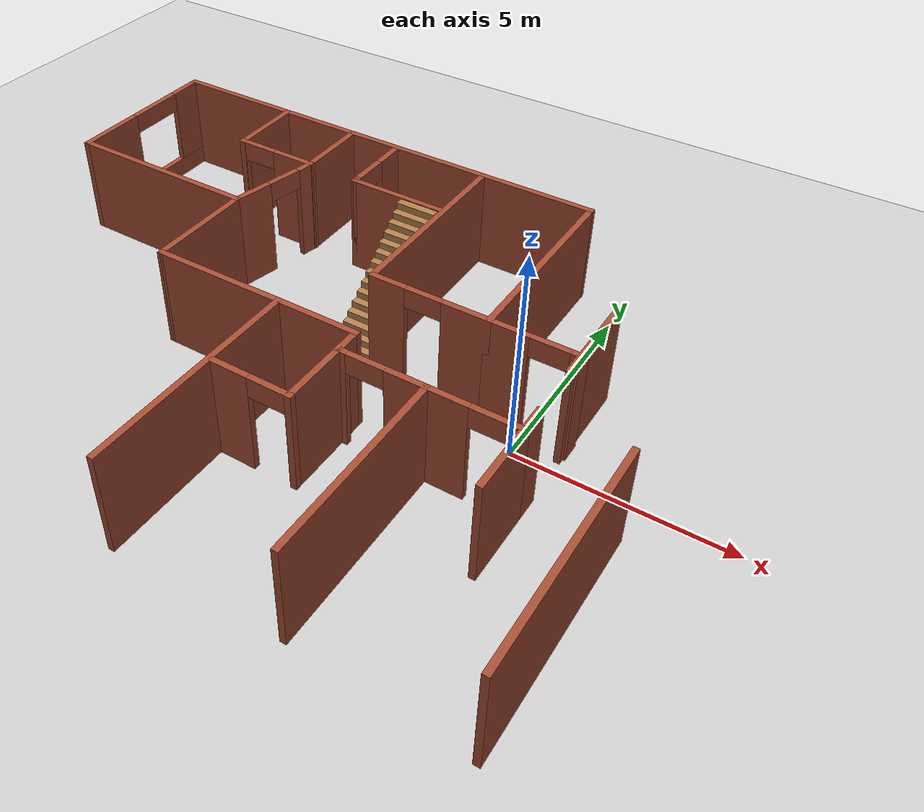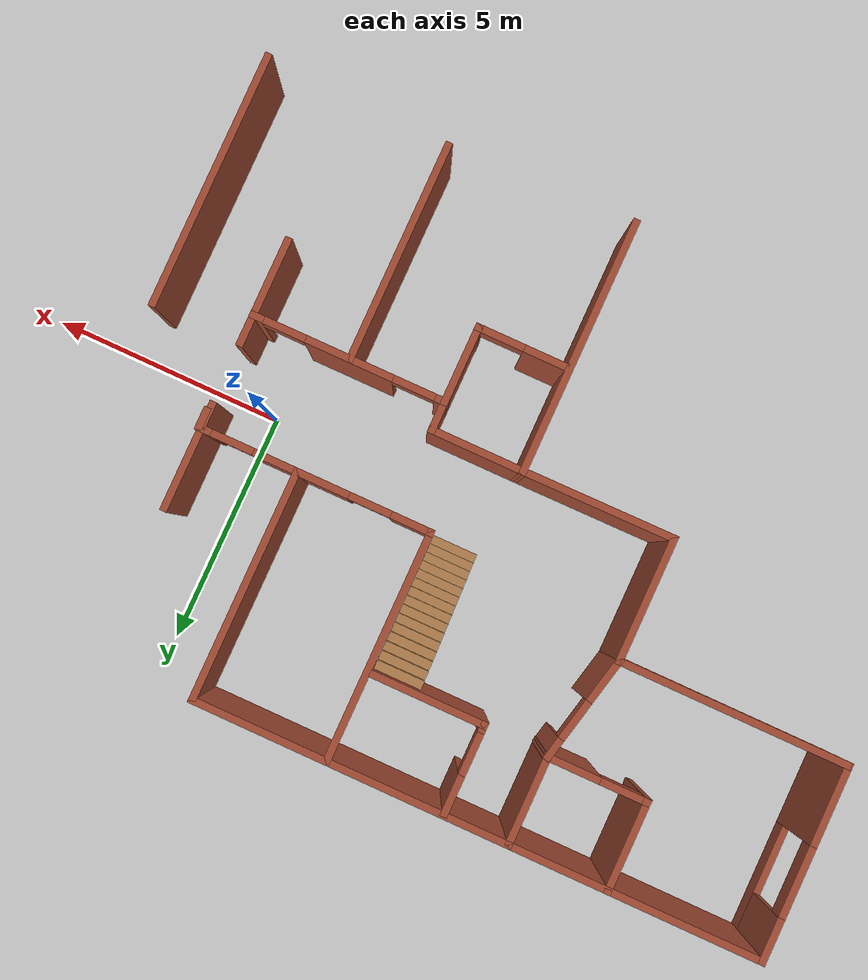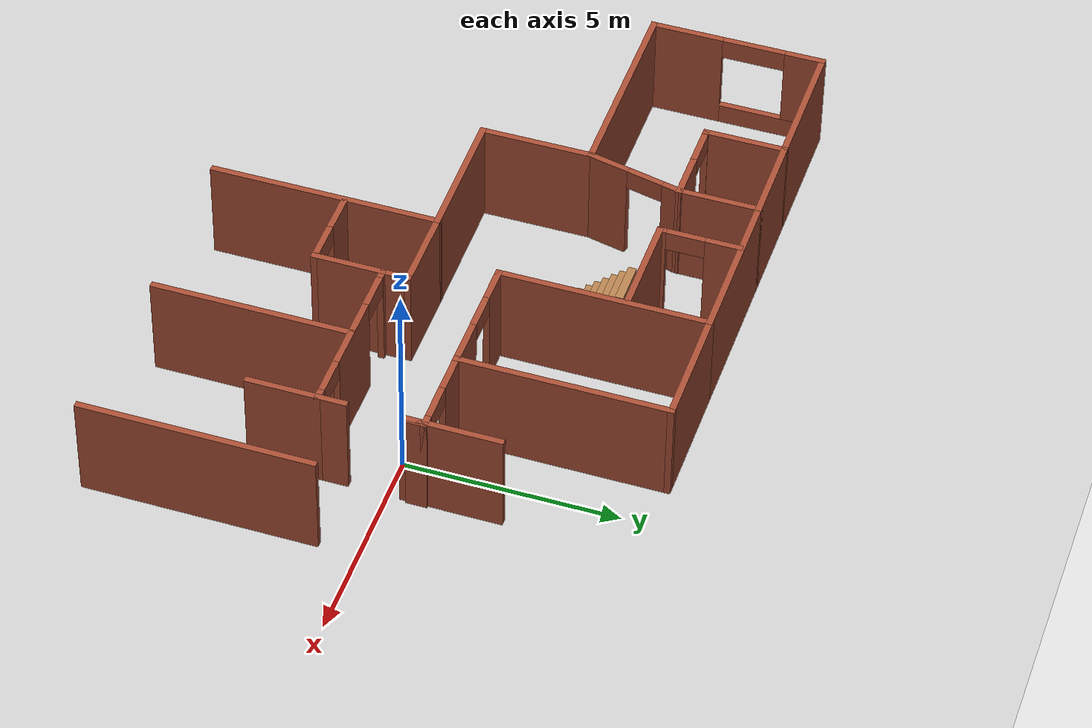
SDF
<sdf version="1.7">
 <world name="default">
  <model name="ground_plane">
   <static>1</static>
   <link name="link">
    <collision name="collision">
     <geometry><plane><normal>0 0 1</normal><size>100 100</size></plane></geometry>
     <surface><friction><ode><mu>100</mu><mu2>50</mu2></ode></friction></surface>
    </collision>
    <visual name="visual">
     <cast_shadows>0</cast_shadows>
     <geometry><plane><normal>0 0 1</normal><size>100 100</size></plane></geometry>
     <material>
      <script><uri>file://media/materials/scripts/gazebo.material</uri><name>Gazebo/Grey</name></script>
     </material>
    </visual>
   </link>
  </model>
  <model name="Apartments2">
   <pose>-0.710579 -0.305207 0 0 -0 0</pose>
   <link name="Stairs_0">
    <visual name="Stairs_0_Visual_0">
     <pose>-3.83768 1.22984 0.083333 0 -0 -3.14159</pose>
     <geometry><box><size>1 0.191726 0.166667</size></box></geometry>
     <material>
      <script><uri>file://media/materials/scripts/gazebo.material</uri><name>Gazebo/Wood</name></script>
      <ambient>1 1 1 1</ambient>
     </material>
     <meta><layer>0</layer></meta>
    </visual>
    <collision name="Stairs_0_Collision_0">
     <geometry><box><size>1 0.191726 0.166667</size></box></geometry>
     <pose>-3.83768 1.22984 0.083333 0 -0 -3.14159</pose>
    </collision>
    <visual name="Stairs_0_Visual_1">
     <pose>-3.83768 1.42156 0.25 0 -0 -3.14159</pose>
     <geometry><box><size>1 0.191726 0.166667</size></box></geometry>
     <material>
      <script><uri>file://media/materials/scripts/gazebo.material</uri><name>Gazebo/Wood</name></script>
      <ambient>1 1 1 1</ambient>
     </material>
     <meta><layer>0</layer></meta>
    </visual>
    <collision name="Stairs_0_Collision_1">
     <geometry><box><size>1 0.191726 0.166667</size></box></geometry>
     <pose>-3.83768 1.42156 0.25 0 -0 -3.14159</pose>
    </collision>
    <visual name="Stairs_0_Visual_2">
     <pose>-3.83768 1.61329 0.416667 0 -0 -3.14159</pose>
     <geometry><box><size>1 0.191726 0.166667</size></box></geometry>
     <material>
      <script><uri>file://media/materials/scripts/gazebo.material</uri><name>Gazebo/Wood</name></script>
      <ambient>1 1 1 1</ambient>
     </material>
     <meta><layer>0</layer></meta>
    </visual>
    <collision name="Stairs_0_Collision_2">
     <geometry><box><size>1 0.191726 0.166667</size></box></geometry>
     <pose>-3.83768 1.61329 0.416667 0 -0 -3.14159</pose>
    </collision>
    <visual name="Stairs_0_Visual_3">
     <pose>-3.83768 1.80502 0.583333 0 -0 -3.14159</pose>
     <geometry><box><size>1 0.191726 0.166667</size></box></geometry>
     <material>
      <script><uri>file://media/materials/scripts/gazebo.material</uri><name>Gazebo/Wood</name></script>
      <ambient>1 1 1 1</ambient>
     </material>
     <meta><layer>0</layer></meta>
    </visual>
    <collision name="Stairs_0_Collision_3">
     <geometry><box><size>1 0.191726 0.166667</size></box></geometry>
     <pose>-3.83768 1.80502 0.583333 0 -0 -3.14159</pose>
    </collision>
    <visual name="Stairs_0_Visual_4">
     <pose>-3.83768 1.99674 0.75 0 -0 -3.14159</pose>
     <geometry><box><size>1 0.191726 0.166667</size></box></geometry>
     <material>
      <script><uri>file://media/materials/scripts/gazebo.material</uri><name>Gazebo/Wood</name></script>
      <ambient>1 1 1 1</ambient>
     </material>
     <meta><layer>0</layer></meta>
    </visual>
    <collision name="Stairs_0_Collision_4">
     <geometry><box><size>1 0.191726 0.166667</size></box></geometry>
     <pose>-3.83768 1.99674 0.75 0 -0 -3.14159</pose>
    </collision>
    <visual name="Stairs_0_Visual_5">
     <pose>-3.83768 2.18847 0.916667 0 -0 -3.14159</pose>
     <geometry><box><size>1 0.191726 0.166667</size></box></geometry>
     <material>
      <script><uri>file://media/materials/scripts/gazebo.material</uri><name>Gazebo/Wood</name></script>
      <ambient>1 1 1 1</ambient>
     </material>
     <meta><layer>0</layer></meta>
    </visual>
    <collision name="Stairs_0_Collision_5">
     <geometry><box><size>1 0.191726 0.166667</size></box></geometry>
     <pose>-3.83768 2.18847 0.916667 0 -0 -3.14159</pose>
    </collision>
    <visual name="Stairs_0_Visual_6">
     <pose>-3.83768 2.38019 1.08333 0 -0 -3.14159</pose>
     <geometry><box><size>1 0.191726 0.166667</size></box></geometry>
     <material>
      <script><uri>file://media/materials/scripts/gazebo.material</uri><name>Gazebo/Wood</name></script>
      <ambient>1 1 1 1</ambient>
     </material>
     <meta><layer>0</layer></meta>
    </visual>
    <collision name="Stairs_0_Collision_6">
     <geometry><box><size>1 0.191726 0.166667</size></box></geometry>
     <pose>-3.83768 2.38019 1.08333 0 -0 -3.14159</pose>
    </collision>
    <visual name="Stairs_0_Visual_7">
     <pose>-3.83768 2.57192 1.25 0 -0 -3.14159</pose>
     <geometry><box><size>1 0.191726 0.166667</size></box></geometry>
     <material>
      <script><uri>file://media/materials/scripts/gazebo.material</uri><name>Gazebo/Wood</name></script>
      <ambient>1 1 1 1</ambient>
     </material>
     <meta><layer>0</layer></meta>
    </visual>
    <collision name="Stairs_0_Collision_7">
     <geometry><box><size>1 0.191726 0.166667</size></box></geometry>
     <pose>-3.83768 2.57192 1.25 0 -0 -3.14159</pose>
    </collision>
    <visual name="Stairs_0_Visual_8">
     <pose>-3.83768 2.76365 1.41667 0 -0 -3.14159</pose>
     <geometry><box><size>1 0.191726 0.166667</size></box></geometry>
     <material>
      <script><uri>file://media/materials/scripts/gazebo.material</uri><name>Gazebo/Wood</name></script>
      <ambient>1 1 1 1</ambient>
     </material>
     <meta><layer>0</layer></meta>
    </visual>
    <collision name="Stairs_0_Collision_8">
     <geometry><box><size>1 0.191726 0.166667</size></box></geometry>
     <pose>-3.83768 2.76365 1.41667 0 -0 -3.14159</pose>
    </collision>
    <visual name="Stairs_0_Visual_9">
     <pose>-3.83768 2.95537 1.58333 0 -0 -3.14159</pose>
     <geometry><box><size>1 0.191726 0.166667</size></box></geometry>
     <material>
      <script><uri>file://media/materials/scripts/gazebo.material</uri><name>Gazebo/Wood</name></script>
      <ambient>1 1 1 1</ambient>
     </material>
     <meta><layer>0</layer></meta>
    </visual>
    <collision name="Stairs_0_Collision_9">
     <geometry><box><size>1 0.191726 0.166667</size></box></geometry>
     <pose>-3.83768 2.95537 1.58333 0 -0 -3.14159</pose>
    </collision>
    <visual name="Stairs_0_Visual_10">
     <pose>-3.83768 3.1471 1.75 0 -0 -3.14159</pose>
     <geometry><box><size>1 0.191726 0.166667</size></box></geometry>
     <material>
      <script><uri>file://media/materials/scripts/gazebo.material</uri><name>Gazebo/Wood</name></script>
      <ambient>1 1 1 1</ambient>
     </material>
     <meta><layer>0</layer></meta>
    </visual>
    <collision name="Stairs_0_Collision_10">
     <geometry><box><size>1 0.191726 0.166667</size></box></geometry>
     <pose>-3.83768 3.1471 1.75 0 -0 -3.14159</pose>
    </collision>
    <visual name="Stairs_0_Visual_11">
     <pose>-3.83768 3.33882 1.91667 0 -0 -3.14159</pose>
     <geometry><box><size>1 0.191726 0.166667</size></box></geometry>
     <material>
      <script><uri>file://media/materials/scripts/gazebo.material</uri><name>Gazebo/Wood</name></script>
      <ambient>1 1 1 1</ambient>
     </material>
     <meta><layer>0</layer></meta>
    </visual>
    <collision name="Stairs_0_Collision_11">
     <geometry><box><size>1 0.191726 0.166667</size></box></geometry>
     <pose>-3.83768 3.33882 1.91667 0 -0 -3.14159</pose>
    </collision>
    <visual name="Stairs_0_Visual_12">
     <pose>-3.83768 3.53055 2.08333 0 -0 -3.14159</pose>
     <geometry><box><size>1 0.191726 0.166667</size></box></geometry>
     <material>
      <script><uri>file://media/materials/scripts/gazebo.material</uri><name>Gazebo/Wood</name></script>
      <ambient>1 1 1 1</ambient>
     </material>
     <meta><layer>0</layer></meta>
    </visual>
    <collision name="Stairs_0_Collision_12">
     <geometry><box><size>1 0.191726 0.166667</size></box></geometry>
     <pose>-3.83768 3.53055 2.08333 0 -0 -3.14159</pose>
    </collision>
    <visual name="Stairs_0_Visual_13">
     <pose>-3.83768 3.72228 2.25 0 -0 -3.14159</pose>
     <geometry><box><size>1 0.191726 0.166667</size></box></geometry>
     <material>
      <script><uri>file://media/materials/scripts/gazebo.material</uri><name>Gazebo/Wood</name></script>
      <ambient>1 1 1 1</ambient>
     </material>
     <meta><layer>0</layer></meta>
    </visual>
    <collision name="Stairs_0_Collision_13">
     <geometry><box><size>1 0.191726 0.166667</size></box></geometry>
     <pose>-3.83768 3.72228 2.25 0 -0 -3.14159</pose>
    </collision>
    <visual name="Stairs_0_Visual_14">
     <pose>-3.83768 3.914 2.41667 0 -0 -3.14159</pose>
     <geometry><box><size>1 0.191726 0.166667</size></box></geometry>
     <material>
      <script><uri>file://media/materials/scripts/gazebo.material</uri><name>Gazebo/Wood</name></script>
      <ambient>1 1 1 1</ambient>
     </material>
     <meta><layer>0</layer></meta>
    </visual>
    <collision name="Stairs_0_Collision_14">
     <geometry><box><size>1 0.191726 0.166667</size></box></geometry>
     <pose>-3.83768 3.914 2.41667 0 -0 -3.14159</pose>
    </collision>
   </link>
   <link name="Wall_105">
    <collision name="Wall_105_Collision">
     <geometry><box><size>1.75 0.15 2.5</size></box></geometry>
     <pose>0 0 1.25 0 -0 0</pose>
    </collision>
    <visual name="Wall_105_Visual">
     <pose>0 0 1.25 0 -0 0</pose>
     <geometry><box><size>1.75 0.15 2.5</size></box></geometry>
     <material>
      <script><uri>file://media/materials/scripts/gazebo.material</uri><name>Gazebo/Bricks</name></script>
      <ambient>1 1 1 1</ambient>
     </material>
     <meta><layer>0</layer></meta>
    </visual>
    <pose>-2.44477 -2.06693 0 0 -0 -1.5708</pose>
   </link>
   <link name="Wall_106">
    <pose>-3.36977 -2.86693 0 0 -0 3.14159</pose>
    <visual name="Wall_106_Visual_0">
     <pose>-0.920669 0 1.25 0 -0 0</pose>
     <geometry><box><size>0.158663 0.15 2.5</size></box></geometry>
     <material>
      <script><uri>file://media/materials/scripts/gazebo.material</uri><name>Gazebo/Bricks</name></script>
      <ambient>1 1 1 1</ambient>
     </material>
     <meta><layer>0</layer></meta>
    </visual>
    <collision name="Wall_106_Collision_0">
     <geometry><box><size>0.158663 0.15 2.5</size></box></geometry>
     <pose>-0.920669 0 1.25 0 -0 0</pose>
    </collision>
    <visual name="Wall_106_Visual_1">
     <pose>0.529331 0 1.25 0 -0 0</pose>
     <geometry><box><size>0.941337 0.15 2.5</size></box></geometry>
     <material>
      <script><uri>file://media/materials/scripts/gazebo.material</uri><name>Gazebo/Bricks</name></script>
      <ambient>1 1 1 1</ambient>
     </material>
     <meta><layer>0</layer></meta>
    </visual>
    <collision name="Wall_106_Collision_1">
     <geometry><box><size>0.941337 0.15 2.5</size></box></geometry>
     <pose>0.529331 0 1.25 0 -0 0</pose>
    </collision>
    <visual name="Wall_106_Visual_2">
     <pose>-0.391337 0 2.25 0 -0 0</pose>
     <geometry><box><size>0.9 0.15 0.5</size></box></geometry>
     <material>
      <script><uri>file://media/materials/scripts/gazebo.material</uri><name>Gazebo/Bricks</name></script>
      <ambient>1 1 1 1</ambient>
     </material>
     <meta><layer>0</layer></meta>
    </visual>
    <collision name="Wall_106_Collision_2">
     <geometry><box><size>0.9 0.15 0.5</size></box></geometry>
     <pose>-0.391337 0 2.25 0 -0 0</pose>
    </collision>
   </link>
   <link name="Wall_14">
    <pose>-7.35 3.03684 0 0 -0 1.35213</pose>
    <visual name="Wall_14_Visual_0">
     <pose>-0.699604 0 1.25 0 -0 0</pose>
     <geometry><box><size>1.05568 0.15 2.5</size></box></geometry>
     <material>
      <script><uri>file://media/materials/scripts/gazebo.material</uri><name>Gazebo/Bricks</name></script>
      <ambient>1 1 1 1</ambient>
     </material>
     <meta><layer>0</layer></meta>
    </visual>
    <collision name="Wall_14_Collision_0">
     <geometry><box><size>1.05568 0.15 2.5</size></box></geometry>
     <pose>-0.699604 0 1.25 0 -0 0</pose>
    </collision>
    <visual name="Wall_14_Visual_1">
     <pose>0.977839 0 1.25 0 -0 0</pose>
     <geometry><box><size>0.499209 0.15 2.5</size></box></geometry>
     <material>
      <script><uri>file://media/materials/scripts/gazebo.material</uri><name>Gazebo/Bricks</name></script>
      <ambient>1 1 1 1</ambient>
     </material>
     <meta><layer>0</layer></meta>
    </visual>
    <collision name="Wall_14_Collision_1">
     <geometry><box><size>0.499209 0.15 2.5</size></box></geometry>
     <pose>0.977839 0 1.25 0 -0 0</pose>
    </collision>
    <visual name="Wall_14_Visual_2">
     <pose>0.278234 0 2.25 0 -0 0</pose>
     <geometry><box><size>0.9 0.15 0.5</size></box></geometry>
     <material>
      <script><uri>file://media/materials/scripts/gazebo.material</uri><name>Gazebo/Bricks</name></script>
      <ambient>1 1 1 1</ambient>
     </material>
     <meta><layer>0</layer></meta>
    </visual>
    <collision name="Wall_14_Collision_2">
     <geometry><box><size>0.9 0.15 0.5</size></box></geometry>
     <pose>0.278234 0 2.25 0 -0 0</pose>
    </collision>
   </link>
   <link name="Wall_16">
    <collision name="Wall_16_Collision">
     <geometry><box><size>5.5 0.15 2.5</size></box></geometry>
     <pose>0 0 1.25 0 -0 0</pose>
    </collision>
    <visual name="Wall_16_Visual">
     <pose>0 0 1.25 0 -0 0</pose>
     <geometry><box><size>5.5 0.15 2.5</size></box></geometry>
     <material>
      <script><uri>file://media/materials/scripts/gazebo.material</uri><name>Gazebo/Bricks</name></script>
      <ambient>1 1 1 1</ambient>
     </material>
     <meta><layer>0</layer></meta>
    </visual>
    <pose>-4.39477 -3.34193 0 0 -0 -1.5708</pose>
   </link>
   <link name="Wall_2">
    <collision name="Wall_2_Collision">
     <geometry><box><size>5 0.15 2.5</size></box></geometry>
     <pose>0 0 1.25 0 -0 0</pose>
    </collision>
    <visual name="Wall_2_Visual">
     <pose>0 0 1.25 0 -0 0</pose>
     <geometry><box><size>5 0.15 2.5</size></box></geometry>
     <material>
      <script><uri>file://media/materials/scripts/gazebo.material</uri><name>Gazebo/Bricks</name></script>
      <ambient>1 1 1 1</ambient>
     </material>
     <meta><layer>0</layer></meta>
    </visual>
    <pose>-10.025 1.91184 0 0 -0 3.14159</pose>
   </link>
   <link name="Wall_24">
    <collision name="Wall_24_Collision">
     <geometry><box><size>0.75 0.15 2.5</size></box></geometry>
     <pose>0 0 1.25 0 -0 0</pose>
    </collision>
    <visual name="Wall_24_Visual">
     <pose>0 0 1.25 0 -0 0</pose>
     <geometry><box><size>0.75 0.15 2.5</size></box></geometry>
     <material>
      <script><uri>file://media/materials/scripts/gazebo.material</uri><name>Gazebo/Bricks</name></script>
      <ambient>1 1 1 1</ambient>
     </material>
     <meta><layer>0</layer></meta>
    </visual>
    <pose>1.65523 -0.966927 0 0 -0 -1.5708</pose>
   </link>
   <link name="Wall_25">
    <pose>-0.394772 -1.26693 0 0 -0 3.14159</pose>
    <visual name="Wall_25_Visual_0">
     <pose>-1.97566 0 1.25 0 -0 0</pose>
     <geometry><box><size>0.298682 0.15 2.5</size></box></geometry>
     <material>
      <script><uri>file://media/materials/scripts/gazebo.material</uri><name>Gazebo/Bricks</name></script>
      <ambient>1 1 1 1</ambient>
     </material>
     <meta><layer>0</layer></meta>
    </visual>
    <collision name="Wall_25_Collision_0">
     <geometry><box><size>0.298682 0.15 2.5</size></box></geometry>
     <pose>-1.97566 0 1.25 0 -0 0</pose>
    </collision>
    <visual name="Wall_25_Visual_1">
     <pose>0.012069 0 1.25 0 -0 0</pose>
     <geometry><box><size>1.87677 0.15 2.5</size></box></geometry>
     <material>
      <script><uri>file://media/materials/scripts/gazebo.material</uri><name>Gazebo/Bricks</name></script>
      <ambient>1 1 1 1</ambient>
     </material>
     <meta><layer>0</layer></meta>
    </visual>
    <collision name="Wall_25_Collision_1">
     <geometry><box><size>1.87677 0.15 2.5</size></box></geometry>
     <pose>0.012069 0 1.25 0 -0 0</pose>
    </collision>
    <visual name="Wall_25_Visual_2">
     <pose>1.98773 0 1.25 0 -0 0</pose>
     <geometry><box><size>0.274544 0.15 2.5</size></box></geometry>
     <material>
      <script><uri>file://media/materials/scripts/gazebo.material</uri><name>Gazebo/Bricks</name></script>
      <ambient>1 1 1 1</ambient>
     </material>
     <meta><layer>0</layer></meta>
    </visual>
    <collision name="Wall_25_Collision_2">
     <geometry><box><size>0.274544 0.15 2.5</size></box></geometry>
     <pose>1.98773 0 1.25 0 -0 0</pose>
    </collision>
    <visual name="Wall_25_Visual_3">
     <pose>-1.37632 0 2.25 0 -0 0</pose>
     <geometry><box><size>0.9 0.15 0.5</size></box></geometry>
     <material>
      <script><uri>file://media/materials/scripts/gazebo.material</uri><name>Gazebo/Bricks</name></script>
      <ambient>1 1 1 1</ambient>
     </material>
     <meta><layer>0</layer></meta>
    </visual>
    <collision name="Wall_25_Collision_3">
     <geometry><box><size>0.9 0.15 0.5</size></box></geometry>
     <pose>-1.37632 0 2.25 0 -0 0</pose>
    </collision>
    <visual name="Wall_25_Visual_4">
     <pose>1.40046 0 2.25 0 -0 0</pose>
     <geometry><box><size>0.9 0.15 0.5</size></box></geometry>
     <material>
      <script><uri>file://media/materials/scripts/gazebo.material</uri><name>Gazebo/Bricks</name></script>
      <ambient>1 1 1 1</ambient>
     </material>
     <meta><layer>0</layer></meta>
    </visual>
    <collision name="Wall_25_Collision_4">
     <geometry><box><size>0.9 0.15 0.5</size></box></geometry>
     <pose>1.40046 0 2.25 0 -0 0</pose>
    </collision>
   </link>
   <link name="Wall_26">
    <collision name="Wall_26_Collision">
     <geometry><box><size>0.75 0.15 2.5</size></box></geometry>
     <pose>0 0 1.25 0 -0 0</pose>
    </collision>
    <visual name="Wall_26_Visual">
     <pose>0 0 1.25 0 -0 0</pose>
     <geometry><box><size>0.75 0.15 2.5</size></box></geometry>
     <material>
      <script><uri>file://media/materials/scripts/gazebo.material</uri><name>Gazebo/Bricks</name></script>
      <ambient>1 1 1 1</ambient>
     </material>
     <meta><layer>0</layer></meta>
    </visual>
    <pose>-2.44477 -0.966927 0 0 -0 1.5708</pose>
   </link>
   <link name="Wall_27">
    <collision name="Wall_27_Collision">
     <geometry><box><size>2.1 0.15 2.5</size></box></geometry>
     <pose>0 0 1.25 0 -0 0</pose>
    </collision>
    <visual name="Wall_27_Visual">
     <pose>0 0 1.25 0 -0 0</pose>
     <geometry><box><size>2.1 0.15 2.5</size></box></geometry>
     <material>
      <script><uri>file://media/materials/scripts/gazebo.material</uri><name>Gazebo/Bricks</name></script>
      <ambient>1 1 1 1</ambient>
     </material>
     <meta><layer>0</layer></meta>
    </visual>
    <pose>-3.41977 -0.666927 0 0 -0 -3.14159</pose>
   </link>
   <link name="Wall_3">
    <pose>-12.45 3.96184 0 0 -0 1.5708</pose>
    <visual name="Wall_3_Visual_0">
     <pose>-1.23573 0 1.25 0 -0 0</pose>
     <geometry><box><size>1.77855 0.15 2.5</size></box></geometry>
     <material>
      <script><uri>file://media/materials/scripts/gazebo.material</uri><name>Gazebo/Bricks</name></script>
      <ambient>1 1 1 1</ambient>
     </material>
     <meta><layer>0</layer></meta>
    </visual>
    <collision name="Wall_3_Collision_0">
     <geometry><box><size>1.77855 0.15 2.5</size></box></geometry>
     <pose>-1.23573 0 1.25 0 -0 0</pose>
    </collision>
    <visual name="Wall_3_Visual_1">
     <pose>0.889273 0 0.25 0 -0 0</pose>
     <geometry><box><size>2.47145 0.15 0.5</size></box></geometry>
     <material>
      <script><uri>file://media/materials/scripts/gazebo.material</uri><name>Gazebo/Bricks</name></script>
      <ambient>1 1 1 1</ambient>
     </material>
     <meta><layer>0</layer></meta>
    </visual>
    <collision name="Wall_3_Collision_1">
     <geometry><box><size>2.47145 0.15 0.5</size></box></geometry>
     <pose>0.889273 0 0.25 0 -0 0</pose>
    </collision>
    <visual name="Wall_3_Visual_2">
     <pose>1.63927 0 1.5 0 -0 0</pose>
     <geometry><box><size>0.971454 0.15 2</size></box></geometry>
     <material>
      <script><uri>file://media/materials/scripts/gazebo.material</uri><name>Gazebo/Bricks</name></script>
      <ambient>1 1 1 1</ambient>
     </material>
     <meta><layer>0</layer></meta>
    </visual>
    <collision name="Wall_3_Collision_2">
     <geometry><box><size>0.971454 0.15 2</size></box></geometry>
     <pose>1.63927 0 1.5 0 -0 0</pose>
    </collision>
    <visual name="Wall_3_Visual_3">
     <pose>0.403546 0 2.25 0 -0 0</pose>
     <geometry><box><size>1.5 0.15 0.5</size></box></geometry>
     <material>
      <script><uri>file://media/materials/scripts/gazebo.material</uri><name>Gazebo/Bricks</name></script>
      <ambient>1 1 1 1</ambient>
     </material>
     <meta><layer>0</layer></meta>
    </visual>
    <collision name="Wall_3_Collision_3">
     <geometry><box><size>1.5 0.15 0.5</size></box></geometry>
     <pose>0.403546 0 2.25 0 -0 0</pose>
    </collision>
   </link>
   <link name="Wall_30">
    <collision name="Wall_30_Collision">
     <geometry><box><size>4.75 0.15 2.5</size></box></geometry>
     <pose>0 0 1.25 0 -0 0</pose>
    </collision>
    <visual name="Wall_30_Visual">
     <pose>0 0 1.25 0 -0 0</pose>
     <geometry><box><size>4.75 0.15 2.5</size></box></geometry>
     <material>
      <script><uri>file://media/materials/scripts/gazebo.material</uri><name>Gazebo/Bricks</name></script>
      <ambient>1 1 1 1</ambient>
     </material>
     <meta><layer>0</layer></meta>
    </visual>
    <pose>-0.419442 -3.57774 0 0 -0 -1.5708</pose>
   </link>
   <link name="Wall_35">
    <collision name="Wall_35_Collision">
     <geometry><box><size>5.5 0.15 2.5</size></box></geometry>
     <pose>0 0 1.25 0 -0 0</pose>
    </collision>
    <visual name="Wall_35_Visual">
     <pose>0 0 1.25 0 -0 0</pose>
     <geometry><box><size>5.5 0.15 2.5</size></box></geometry>
     <material>
      <script><uri>file://media/materials/scripts/gazebo.material</uri><name>Gazebo/Bricks</name></script>
      <ambient>1 1 1 1</ambient>
     </material>
     <meta><layer>0</layer></meta>
    </visual>
    <pose>3.53618 -3.34257 0 0 -0 -1.5708</pose>
   </link>
   <link name="Wall_4">
    <collision name="Wall_4_Collision">
     <geometry><box><size>5.5 0.15 2.5</size></box></geometry>
     <pose>0 0 1.25 0 -0 0</pose>
    </collision>
    <visual name="Wall_4_Visual">
     <pose>0 0 1.25 0 -0 0</pose>
     <geometry><box><size>5.5 0.15 2.5</size></box></geometry>
     <material>
      <script><uri>file://media/materials/scripts/gazebo.material</uri><name>Gazebo/Bricks</name></script>
      <ambient>1 1 1 1</ambient>
     </material>
     <meta><layer>0</layer></meta>
    </visual>
    <pose>-9.775 6.01184 0 0 -0 0</pose>
   </link>
   <link name="Wall_48">
    <collision name="Wall_48_Collision">
     <geometry><box><size>1.75 0.15 2.5</size></box></geometry>
     <pose>0 0 1.25 0 -0 0</pose>
    </collision>
    <visual name="Wall_48_Visual">
     <pose>0 0 1.25 0 -0 0</pose>
     <geometry><box><size>1.75 0.15 2.5</size></box></geometry>
     <material>
      <script><uri>file://media/materials/scripts/gazebo.material</uri><name>Gazebo/Bricks</name></script>
      <ambient>1 1 1 1</ambient>
     </material>
     <meta><layer>0</layer></meta>
    </visual>
    <pose>1.65523 -2.06693 0 0 -0 -1.5708</pose>
   </link>
   <link name="Wall_5">
    <collision name="Wall_5_Collision">
     <geometry><box><size>2 0.15 2.5</size></box></geometry>
     <pose>0 0 1.25 0 -0 0</pose>
    </collision>
    <visual name="Wall_5_Visual">
     <pose>0 0 1.25 0 -0 0</pose>
     <geometry><box><size>2 0.15 2.5</size></box></geometry>
     <material>
      <script><uri>file://media/materials/scripts/gazebo.material</uri><name>Gazebo/Bricks</name></script>
      <ambient>1 1 1 1</ambient>
     </material>
     <meta><layer>0</layer></meta>
    </visual>
    <pose>-7.1 5.08684 0 0 -0 -1.5708</pose>
   </link>
   <link name="Wall_52">
    <collision name="Wall_52_Collision">
     <geometry><box><size>2.75 0.15 2.5</size></box></geometry>
     <pose>0 0 1.25 0 -0 0</pose>
    </collision>
    <visual name="Wall_52_Visual">
     <pose>0 0 1.25 0 -0 0</pose>
     <geometry><box><size>2.75 0.15 2.5</size></box></geometry>
     <material>
      <script><uri>file://media/materials/scripts/gazebo.material</uri><name>Gazebo/Bricks</name></script>
      <ambient>1 1 1 1</ambient>
     </material>
     <meta><layer>0</layer></meta>
    </visual>
    <pose>-7.6 0.611839 0 0 -0 -1.5708</pose>
   </link>
   <link name="Wall_53">
    <collision name="Wall_53_Collision">
     <geometry><box><size>3.3553 0.15 2.5</size></box></geometry>
     <pose>0 0 1.25 0 -0 0</pose>
    </collision>
    <visual name="Wall_53_Visual">
     <pose>0 0 1.25 0 -0 0</pose>
     <geometry><box><size>3.3553 0.15 2.5</size></box></geometry>
     <material>
      <script><uri>file://media/materials/scripts/gazebo.material</uri><name>Gazebo/Bricks</name></script>
      <ambient>1 1 1 1</ambient>
     </material>
     <meta><layer>0</layer></meta>
    </visual>
    <pose>-5.99739 -0.677544 0 0 -0 0.006625</pose>
   </link>
   <link name="Wall_55">
    <collision name="Wall_55_Collision">
     <geometry><box><size>4 0.15 2.5</size></box></geometry>
     <pose>0 0 1.25 0 -0 0</pose>
    </collision>
    <visual name="Wall_55_Visual">
     <pose>0 0 1.25 0 -0 0</pose>
     <geometry><box><size>4 0.15 2.5</size></box></geometry>
     <material>
      <script><uri>file://media/materials/scripts/gazebo.material</uri><name>Gazebo/Bricks</name></script>
      <ambient>1 1 1 1</ambient>
     </material>
     <meta><layer>0</layer></meta>
    </visual>
    <pose>-5.175 6.01184 0 0 -0 0</pose>
   </link>
   <link name="Wall_56">
    <collision name="Wall_56_Collision">
     <geometry><box><size>5 0.15 2.5</size></box></geometry>
     <pose>0 0 1.25 0 -0 0</pose>
    </collision>
    <visual name="Wall_56_Visual">
     <pose>0 0 1.25 0 -0 0</pose>
     <geometry><box><size>5 0.15 2.5</size></box></geometry>
     <material>
      <script><uri>file://media/materials/scripts/gazebo.material</uri><name>Gazebo/Bricks</name></script>
      <ambient>1 1 1 1</ambient>
     </material>
     <meta><layer>0</layer></meta>
    </visual>
    <pose>-3.25 3.58684 0 0 -0 -1.5708</pose>
   </link>
   <link name="Wall_57">
    <pose>-1.825 1.16184 0 0 -0 0</pose>
    <visual name="Wall_57_Visual_0">
     <pose>-1.04219 0 1.25 0 -0 0</pose>
     <geometry><box><size>0.915628 0.15 2.5</size></box></geometry>
     <material>
      <script><uri>file://media/materials/scripts/gazebo.material</uri><name>Gazebo/Bricks</name></script>
      <ambient>1 1 1 1</ambient>
     </material>
     <meta><layer>0</layer></meta>
    </visual>
    <collision name="Wall_57_Collision_0">
     <geometry><box><size>0.915628 0.15 2.5</size></box></geometry>
     <pose>-1.04219 0 1.25 0 -0 0</pose>
    </collision>
    <visual name="Wall_57_Visual_1">
     <pose>0.907814 0 1.25 0 -0 0</pose>
     <geometry><box><size>1.18437 0.15 2.5</size></box></geometry>
     <material>
      <script><uri>file://media/materials/scripts/gazebo.material</uri><name>Gazebo/Bricks</name></script>
      <ambient>1 1 1 1</ambient>
     </material>
     <meta><layer>0</layer></meta>
    </visual>
    <collision name="Wall_57_Collision_1">
     <geometry><box><size>1.18437 0.15 2.5</size></box></geometry>
     <pose>0.907814 0 1.25 0 -0 0</pose>
    </collision>
    <visual name="Wall_57_Visual_2">
     <pose>-0.134372 0 2.25 0 -0 0</pose>
     <geometry><box><size>0.9 0.15 0.5</size></box></geometry>
     <material>
      <script><uri>file://media/materials/scripts/gazebo.material</uri><name>Gazebo/Bricks</name></script>
      <ambient>1 1 1 1</ambient>
     </material>
     <meta><layer>0</layer></meta>
    </visual>
    <collision name="Wall_57_Collision_2">
     <geometry><box><size>0.9 0.15 0.5</size></box></geometry>
     <pose>-0.134372 0 2.25 0 -0 0</pose>
    </collision>
   </link>
   <link name="Wall_58">
    <collision name="Wall_58_Collision">
     <geometry><box><size>5 0.15 2.5</size></box></geometry>
     <pose>0 0 1.25 0 -0 0</pose>
    </collision>
    <visual name="Wall_58_Visual">
     <pose>0 0 1.25 0 -0 0</pose>
     <geometry><box><size>5 0.15 2.5</size></box></geometry>
     <material>
      <script><uri>file://media/materials/scripts/gazebo.material</uri><name>Gazebo/Bricks</name></script>
      <ambient>1 1 1 1</ambient>
     </material>
     <meta><layer>0</layer></meta>
    </visual>
    <pose>-0.4 3.58684 0 0 -0 1.5708</pose>
   </link>
   <link name="Wall_59">
    <collision name="Wall_59_Collision">
     <geometry><box><size>3 0.15 2.5</size></box></geometry>
     <pose>0 0 1.25 0 -0 0</pose>
    </collision>
    <visual name="Wall_59_Visual">
     <pose>0 0 1.25 0 -0 0</pose>
     <geometry><box><size>3 0.15 2.5</size></box></geometry>
     <material>
      <script><uri>file://media/materials/scripts/gazebo.material</uri><name>Gazebo/Bricks</name></script>
      <ambient>1 1 1 1</ambient>
     </material>
     <meta><layer>0</layer></meta>
    </visual>
    <pose>-1.825 6.01184 0 0 -0 3.14159</pose>
   </link>
   <link name="Wall_6">
    <pose>-8.15 4.16184 0 0 -0 3.14159</pose>
    <visual name="Wall_6_Visual_0">
     <pose>-0.531942 0 1.25 0 -0 0</pose>
     <geometry><box><size>1.18612 0.15 2.5</size></box></geometry>
     <material>
      <script><uri>file://media/materials/scripts/gazebo.material</uri><name>Gazebo/Bricks</name></script>
      <ambient>1 1 1 1</ambient>
     </material>
     <meta><layer>0</layer></meta>
    </visual>
    <collision name="Wall_6_Collision_0">
     <geometry><box><size>1.18612 0.15 2.5</size></box></geometry>
     <pose>-0.531942 0 1.25 0 -0 0</pose>
    </collision>
    <visual name="Wall_6_Visual_1">
     <pose>1.04306 0 1.25 0 -0 0</pose>
     <geometry><box><size>0.163885 0.15 2.5</size></box></geometry>
     <material>
      <script><uri>file://media/materials/scripts/gazebo.material</uri><name>Gazebo/Bricks</name></script>
      <ambient>1 1 1 1</ambient>
     </material>
     <meta><layer>0</layer></meta>
    </visual>
    <collision name="Wall_6_Collision_1">
     <geometry><box><size>0.163885 0.15 2.5</size></box></geometry>
     <pose>1.04306 0 1.25 0 -0 0</pose>
    </collision>
    <visual name="Wall_6_Visual_2">
     <pose>0.511115 0 2.25 0 -0 0</pose>
     <geometry><box><size>0.9 0.15 0.5</size></box></geometry>
     <material>
      <script><uri>file://media/materials/scripts/gazebo.material</uri><name>Gazebo/Bricks</name></script>
      <ambient>1 1 1 1</ambient>
     </material>
     <meta><layer>0</layer></meta>
    </visual>
    <collision name="Wall_6_Collision_2">
     <geometry><box><size>0.9 0.15 0.5</size></box></geometry>
     <pose>0.511115 0 2.25 0 -0 0</pose>
    </collision>
   </link>
   <link name="Wall_61">
    <pose>-5.73284 5.04266 0 0 -0 -1.5708</pose>
    <visual name="Wall_61_Visual_0">
     <pose>-0.567183 0 1.25 0 -0 0</pose>
     <geometry><box><size>0.865635 0.15 2.5</size></box></geometry>
     <material>
      <script><uri>file://media/materials/scripts/gazebo.material</uri><name>Gazebo/Bricks</name></script>
      <ambient>1 1 1 1</ambient>
     </material>
     <meta><layer>0</layer></meta>
    </visual>
    <collision name="Wall_61_Collision_0">
     <geometry><box><size>0.865635 0.15 2.5</size></box></geometry>
     <pose>-0.567183 0 1.25 0 -0 0</pose>
    </collision>
    <visual name="Wall_61_Visual_1">
     <pose>0.882817 0 1.25 0 -0 0</pose>
     <geometry><box><size>0.234365 0.15 2.5</size></box></geometry>
     <material>
      <script><uri>file://media/materials/scripts/gazebo.material</uri><name>Gazebo/Bricks</name></script>
      <ambient>1 1 1 1</ambient>
     </material>
     <meta><layer>0</layer></meta>
    </visual>
    <collision name="Wall_61_Collision_1">
     <geometry><box><size>0.234365 0.15 2.5</size></box></geometry>
     <pose>0.882817 0 1.25 0 -0 0</pose>
    </collision>
    <visual name="Wall_61_Visual_2">
     <pose>0.315635 0 2.25 0 -0 0</pose>
     <geometry><box><size>0.9 0.15 0.5</size></box></geometry>
     <material>
      <script><uri>file://media/materials/scripts/gazebo.material</uri><name>Gazebo/Bricks</name></script>
      <ambient>1 1 1 1</ambient>
     </material>
     <meta><layer>0</layer></meta>
    </visual>
    <collision name="Wall_61_Collision_2">
     <geometry><box><size>0.9 0.15 0.5</size></box></geometry>
     <pose>0.315635 0 2.25 0 -0 0</pose>
    </collision>
   </link>
   <link name="Wall_62">
    <collision name="Wall_62_Collision">
     <geometry><box><size>2.5 0.15 2.5</size></box></geometry>
     <pose>0 0 1.25 0 -0 0</pose>
    </collision>
    <visual name="Wall_62_Visual">
     <pose>0 0 1.25 0 -0 0</pose>
     <geometry><box><size>2.5 0.15 2.5</size></box></geometry>
     <material>
      <script><uri>file://media/materials/scripts/gazebo.material</uri><name>Gazebo/Bricks</name></script>
      <ambient>1 1 1 1</ambient>
     </material>
     <meta><layer>0</layer></meta>
    </visual>
    <pose>-4.55784 4.11766 0 0 -0 0</pose>
   </link>
   <link name="Wall_7">
    <collision name="Wall_7_Collision">
     <geometry><box><size>2 0.15 2.5</size></box></geometry>
     <pose>0 0 1.25 0 -0 0</pose>
    </collision>
    <visual name="Wall_7_Visual">
     <pose>0 0 1.25 0 -0 0</pose>
     <geometry><box><size>2 0.15 2.5</size></box></geometry>
     <material>
      <script><uri>file://media/materials/scripts/gazebo.material</uri><name>Gazebo/Bricks</name></script>
      <ambient>1 1 1 1</ambient>
     </material>
     <meta><layer>0</layer></meta>
    </visual>
    <pose>-9.2 5.08684 0 0 -0 1.5708</pose>
   </link>
   <link name="Wall_76">
    <pose>0.65 1.16184 0 0 -0 0</pose>
    <visual name="Wall_76_Visual_0">
     <pose>-0.618307 0 1.25 0 -0 0</pose>
     <geometry><box><size>1.01339 0.15 2.5</size></box></geometry>
     <material>
      <script><uri>file://media/materials/scripts/gazebo.material</uri><name>Gazebo/Bricks</name></script>
      <ambient>1 1 1 1</ambient>
     </material>
     <meta><layer>0</layer></meta>
    </visual>
    <collision name="Wall_76_Collision_0">
     <geometry><box><size>1.01339 0.15 2.5</size></box></geometry>
     <pose>-0.618307 0 1.25 0 -0 0</pose>
    </collision>
    <visual name="Wall_76_Visual_1">
     <pose>0.956693 0 1.25 0 -0 0</pose>
     <geometry><box><size>0.336614 0.15 2.5</size></box></geometry>
     <material>
      <script><uri>file://media/materials/scripts/gazebo.material</uri><name>Gazebo/Bricks</name></script>
      <ambient>1 1 1 1</ambient>
     </material>
     <meta><layer>0</layer></meta>
    </visual>
    <collision name="Wall_76_Collision_1">
     <geometry><box><size>0.336614 0.15 2.5</size></box></geometry>
     <pose>0.956693 0 1.25 0 -0 0</pose>
    </collision>
    <visual name="Wall_76_Visual_2">
     <pose>0.338386 0 2.25 0 -0 0</pose>
     <geometry><box><size>0.9 0.15 0.5</size></box></geometry>
     <material>
      <script><uri>file://media/materials/scripts/gazebo.material</uri><name>Gazebo/Bricks</name></script>
      <ambient>1 1 1 1</ambient>
     </material>
     <meta><layer>0</layer></meta>
    </visual>
    <collision name="Wall_76_Collision_2">
     <geometry><box><size>0.9 0.15 0.5</size></box></geometry>
     <pose>0.338386 0 2.25 0 -0 0</pose>
    </collision>
   </link>
   <link name="Wall_78">
    <collision name="Wall_78_Collision">
     <geometry><box><size>0.5 0.15 2.5</size></box></geometry>
     <pose>0 0 1.25 0 -0 0</pose>
    </collision>
    <visual name="Wall_78_Visual">
     <pose>0 0 1.25 0 -0 0</pose>
     <geometry><box><size>0.5 0.15 2.5</size></box></geometry>
     <material>
      <script><uri>file://media/materials/scripts/gazebo.material</uri><name>Gazebo/Bricks</name></script>
      <ambient>1 1 1 1</ambient>
     </material>
     <meta><layer>0</layer></meta>
    </visual>
    <pose>1.7 0.986839 0 0 -0 -1.5708</pose>
   </link>
   <link name="Wall_89">
    <collision name="Wall_89_Collision">
     <geometry><box><size>2.35 0.15 2.5</size></box></geometry>
     <pose>0 0 1.25 0 -0 0</pose>
    </collision>
    <visual name="Wall_89_Visual">
     <pose>0 0 1.25 0 -0 0</pose>
     <geometry><box><size>2.35 0.15 2.5</size></box></geometry>
     <material>
      <script><uri>file://media/materials/scripts/gazebo.material</uri><name>Gazebo/Bricks</name></script>
      <ambient>1 1 1 1</ambient>
     </material>
     <meta><layer>0</layer></meta>
    </visual>
    <pose>1.65 1.76184 0 0 -0 -1.5708</pose>
   </link>
   <static>1</static>
  </model>
 </world>
</sdf>
